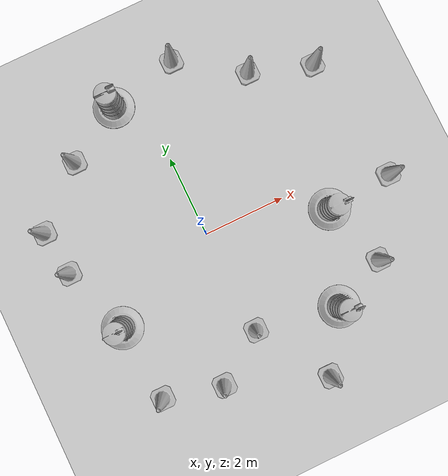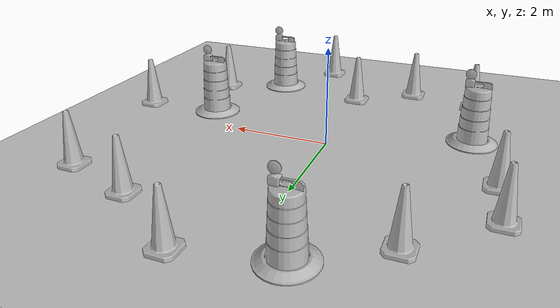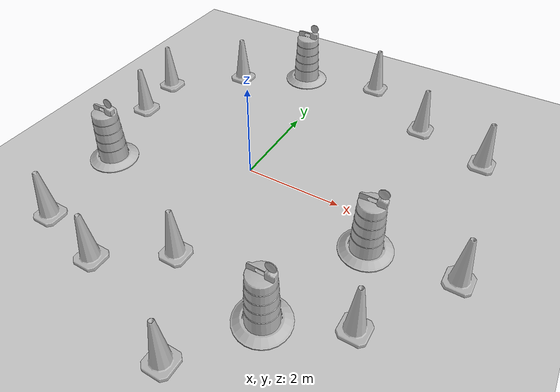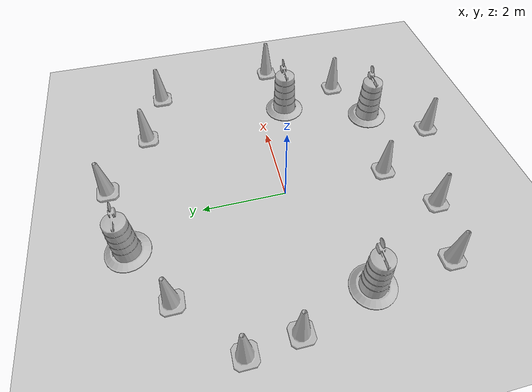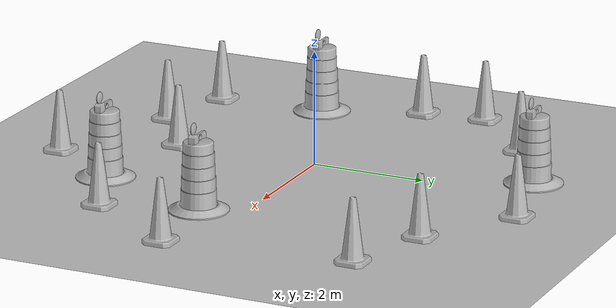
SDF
<sdf version="1.7">
 <world name="default">
  <light name="sun" type="directional">
   <pose>0 0 10 0 -0 0</pose>
   <diffuse>0.8 0.8 0.8 1</diffuse>
   <specular>0.2 0.2 0.2 1</specular>
   <attenuation>
    <range>1000</range>
    <constant>0.9</constant>
    <linear>0.01</linear>
    <quadratic>0.001</quadratic>
   </attenuation>
   <direction>-0.5 0.1 -0.9</direction>
   <spot><inner_angle>0</inner_angle><outer_angle>0</outer_angle><falloff>0</falloff></spot>
  </light>
  <model name="ground_plane">
   <static>1</static>
   <link name="link">
    <collision name="collision">
     <geometry><plane><normal>0 0 1</normal><size>100 100</size></plane></geometry>
     <surface>
      <contact><collide_bitmask>65535</collide_bitmask></contact>
      <friction><ode><mu>100</mu><mu2>50</mu2></ode></friction>
     </surface>
    </collision>
    <visual name="visual">
     <cast_shadows>0</cast_shadows>
     <geometry><plane><normal>0 0 1</normal><size>100 100</size></plane></geometry>
     <material>
      <script><uri>file://media/materials/scripts/gazebo.material</uri><name>Gazebo/Grey</name></script>
     </material>
    </visual>
   </link>
  </model>
  <gravity>0 0 -9.8</gravity>
  <magnetic_field>6e-06 2.3e-05 -4.2e-05</magnetic_field>
  <atmosphere type="adiabatic"/>
  <physics type="ode">
   <max_step_size>0.001</max_step_size>
   <real_time_factor>1</real_time_factor>
   <real_time_update_rate>1000</real_time_update_rate>
  </physics>
  <scene><ambient>0.4 0.4 0.4 1</ambient><background>0.7 0.7 0.7 1</background><shadows>1</shadows></scene>
  <audio><device>default</device></audio>
  <spherical_coordinates>
   <surface_model>EARTH_WGS84</surface_model>
   <latitude_deg>0</latitude_deg>
   <longitude_deg>0</longitude_deg>
   <elevation>0</elevation>
   <heading_deg>0</heading_deg>
  </spherical_coordinates>
  <model name="Construction Barrel">
   <link name="link">
    <inertial>
     <pose>0 0 0.4 0 -0 0</pose>
     <mass>500</mass>
     <inertia><ixx>51.2096</ixx><iyy>51.2096</iyy><izz>25</izz><ixy>0</ixy><ixz>0</ixz><iyz>0</iyz></inertia>
    </inertial>
    <collision name="collision">
     <geometry><mesh><uri>model://construction_barrel/meshes/construction_barrel.dae</uri></mesh></geometry>
    </collision>
    <visual name="visual">
     <geometry><mesh><uri>model://construction_barrel/meshes/construction_barrel.dae</uri></mesh></geometry>
    </visual>
   </link>
   <pose>-2.72878 -1.13362 -2e-06 4e-06 7e-06 -2.8e-05</pose>
  </model>
  <model name="Construction Cone">
   <link name="link">
    <collision name="collision">
     <geometry>
      <mesh><scale>10 10 10</scale><uri>model://construction_cone/meshes/construction_cone.dae</uri></mesh>
     </geometry>
    </collision>
    <visual name="visual">
     <geometry>
      <mesh><scale>10 10 10</scale><uri>model://construction_cone/meshes/construction_cone.dae</uri></mesh>
     </geometry>
    </visual>
    <inertial>
     <inertia><ixx>1</ixx><ixy>0</ixy><ixz>0</ixz><iyy>1</iyy><iyz>0</iyz><izz>1</izz></inertia>
     <mass>1</mass>
    </inertial>
   </link>
   <pose>0.076825 -2.53828 -0 0 -0 0</pose>
  </model>
  <model name="Construction Barrel_0">
   <link name="link">
    <inertial>
     <pose>0 0 0.4 0 -0 0</pose>
     <mass>500</mass>
     <inertia><ixx>51.2096</ixx><iyy>51.2096</iyy><izz>25</izz><ixy>0</ixy><ixz>0</ixz><iyz>0</iyz></inertia>
    </inertial>
    <collision name="collision">
     <geometry><mesh><uri>model://construction_barrel/meshes/construction_barrel.dae</uri></mesh></geometry>
    </collision>
    <visual name="visual">
     <geometry><mesh><uri>model://construction_barrel/meshes/construction_barrel.dae</uri></mesh></geometry>
    </visual>
   </link>
   <pose>2.08909 -2.89049 -0 0 0 -2.3e-05</pose>
  </model>
  <model name="Construction Cone_0">
   <link name="link">
    <collision name="collision">
     <geometry>
      <mesh><scale>10 10 10</scale><uri>model://construction_cone/meshes/construction_cone.dae</uri></mesh>
     </geometry>
    </collision>
    <visual name="visual">
     <geometry>
      <mesh><scale>10 10 10</scale><uri>model://construction_cone/meshes/construction_cone.dae</uri></mesh>
     </geometry>
    </visual>
    <inertial>
     <inertia><ixx>1</ixx><ixy>0</ixy><ixz>0</ixz><iyy>1</iyy><iyz>0</iyz><izz>1</izz></inertia>
     <mass>1</mass>
    </inertial>
   </link>
   <pose>4.53938 -0.586259 -0 0 -0 0</pose>
  </model>
  <model name="Construction Barrel_1">
   <link name="link">
    <inertial>
     <pose>0 0 0.4 0 -0 0</pose>
     <mass>500</mass>
     <inertia><ixx>51.2096</ixx><iyy>51.2096</iyy><izz>25</izz><ixy>0</ixy><ixz>0</ixz><iyz>0</iyz></inertia>
    </inertial>
    <collision name="collision">
     <geometry><mesh><uri>model://construction_barrel/meshes/construction_barrel.dae</uri></mesh></geometry>
    </collision>
    <visual name="visual">
     <geometry><mesh><uri>model://construction_barrel/meshes/construction_barrel.dae</uri></mesh></geometry>
    </visual>
   </link>
   <pose>2.90373 -0.727678 -0 0 0 -2.6e-05</pose>
  </model>
  <model name="Construction Cone_1">
   <link name="link">
    <collision name="collision">
     <geometry>
      <mesh><scale>10 10 10</scale><uri>model://construction_cone/meshes/construction_cone.dae</uri></mesh>
     </geometry>
    </collision>
    <visual name="visual">
     <geometry>
      <mesh><scale>10 10 10</scale><uri>model://construction_cone/meshes/construction_cone.dae</uri></mesh>
     </geometry>
    </visual>
    <inertial>
     <inertia><ixx>1</ixx><ixy>0</ixy><ixz>0</ixz><iyy>1</iyy><iyz>0</iyz><izz>1</izz></inertia>
     <mass>1</mass>
    </inertial>
   </link>
   <pose>1.04695 4.13731 -0 0 -0 0</pose>
  </model>
  <model name="Construction Cone_2">
   <link name="link">
    <collision name="collision">
     <geometry>
      <mesh><scale>10 10 10</scale><uri>model://construction_cone/meshes/construction_cone.dae</uri></mesh>
     </geometry>
    </collision>
    <visual name="visual">
     <geometry>
      <mesh><scale>10 10 10</scale><uri>model://construction_cone/meshes/construction_cone.dae</uri></mesh>
     </geometry>
    </visual>
    <inertial>
     <inertia><ixx>1</ixx><ixy>0</ixy><ixz>0</ixz><iyy>1</iyy><iyz>0</iyz><izz>1</izz></inertia>
     <mass>1</mass>
    </inertial>
   </link>
   <pose>-3.45036 1.68472 -0 0 -0 0</pose>
  </model>
  <model name="Construction Cone_3">
   <link name="link">
    <collision name="collision">
     <geometry>
      <mesh><scale>10 10 10</scale><uri>model://construction_cone/meshes/construction_cone.dae</uri></mesh>
     </geometry>
    </collision>
    <visual name="visual">
     <geometry>
      <mesh><scale>10 10 10</scale><uri>model://construction_cone/meshes/construction_cone.dae</uri></mesh>
     </geometry>
    </visual>
    <inertial>
     <inertia><ixx>1</ixx><ixy>0</ixy><ixz>0</ixz><iyy>1</iyy><iyz>0</iyz><izz>1</izz></inertia>
     <mass>1</mass>
    </inertial>
   </link>
   <pose>-2.56488 -3.01648 0 -0 -0 -0</pose>
  </model>
  <model name="Construction Cone_4">
   <link name="link">
    <collision name="collision">
     <geometry>
      <mesh><scale>10 10 10</scale><uri>model://construction_cone/meshes/construction_cone.dae</uri></mesh>
     </geometry>
    </collision>
    <visual name="visual">
     <geometry>
      <mesh><scale>10 10 10</scale><uri>model://construction_cone/meshes/construction_cone.dae</uri></mesh>
     </geometry>
    </visual>
    <inertial>
     <inertia><ixx>1</ixx><ixy>0</ixy><ixz>0</ixz><iyy>1</iyy><iyz>0</iyz><izz>1</izz></inertia>
     <mass>1</mass>
    </inertial>
   </link>
   <pose>1.18511 -4.24437 -0 0 -0 0</pose>
  </model>
  <model name="Construction Cone_5">
   <link name="link">
    <collision name="collision">
     <geometry>
      <mesh><scale>10 10 10</scale><uri>model://construction_cone/meshes/construction_cone.dae</uri></mesh>
     </geometry>
    </collision>
    <visual name="visual">
     <geometry>
      <mesh><scale>10 10 10</scale><uri>model://construction_cone/meshes/construction_cone.dae</uri></mesh>
     </geometry>
    </visual>
    <inertial>
     <inertia><ixx>1</ixx><ixy>0</ixy><ixz>0</ixz><iyy>1</iyy><iyz>0</iyz><izz>1</izz></inertia>
     <mass>1</mass>
    </inertial>
   </link>
   <pose>4.09423 2.58923 -0 0 -0 0</pose>
  </model>
  <model name="Construction Cone_6">
   <link name="link">
    <collision name="collision">
     <geometry>
      <mesh><scale>10 10 10</scale><uri>model://construction_cone/meshes/construction_cone.dae</uri></mesh>
     </geometry>
    </collision>
    <visual name="visual">
     <geometry>
      <mesh><scale>10 10 10</scale><uri>model://construction_cone/meshes/construction_cone.dae</uri></mesh>
     </geometry>
    </visual>
    <inertial>
     <inertia><ixx>1</ixx><ixy>0</ixy><ixz>0</ixz><iyy>1</iyy><iyz>0</iyz><izz>1</izz></inertia>
     <mass>1</mass>
    </inertial>
   </link>
   <pose>-1.14179 -3.36617 -0 0 -0 0</pose>
  </model>
  <model name="Construction Cone_7">
   <link name="link">
    <collision name="collision">
     <geometry>
      <mesh><scale>10 10 10</scale><uri>model://construction_cone/meshes/construction_cone.dae</uri></mesh>
     </geometry>
    </collision>
    <visual name="visual">
     <geometry>
      <mesh><scale>10 10 10</scale><uri>model://construction_cone/meshes/construction_cone.dae</uri></mesh>
     </geometry>
    </visual>
    <inertial>
     <inertia><ixx>1</ixx><ixy>0</ixy><ixz>0</ixz><iyy>1</iyy><iyz>0</iyz><izz>1</izz></inertia>
     <mass>1</mass>
    </inertial>
   </link>
   <pose>-3.31542 0.562256 -5e-06 -4e-06 1e-06 0</pose>
  </model>
  <model name="Construction Cone_8">
   <link name="link">
    <collision name="collision">
     <geometry>
      <mesh><scale>10 10 10</scale><uri>model://construction_cone/meshes/construction_cone.dae</uri></mesh>
     </geometry>
    </collision>
    <visual name="visual">
     <geometry>
      <mesh><scale>10 10 10</scale><uri>model://construction_cone/meshes/construction_cone.dae</uri></mesh>
     </geometry>
    </visual>
    <inertial>
     <inertia><ixx>1</ixx><ixy>0</ixy><ixz>0</ixz><iyy>1</iyy><iyz>0</iyz><izz>1</izz></inertia>
     <mass>1</mass>
    </inertial>
   </link>
   <pose>-2.09652 2.90585 -0 0 -1e-06 0</pose>
  </model>
  <model name="Construction Barrel_2">
   <link name="link">
    <inertial>
     <pose>0 0 0.4 0 -0 0</pose>
     <mass>500</mass>
     <inertia><ixx>51.2096</ixx><iyy>51.2096</iyy><izz>25</izz><ixy>0</ixy><ixz>0</ixz><iyz>0</iyz></inertia>
    </inertial>
    <collision name="collision">
     <geometry><mesh><uri>model://construction_barrel/meshes/construction_barrel.dae</uri></mesh></geometry>
    </collision>
    <visual name="visual">
     <geometry><mesh><uri>model://construction_barrel/meshes/construction_barrel.dae</uri></mesh></geometry>
    </visual>
   </link>
   <pose>-0.688825 3.72292 1e-06 2e-06 3e-06 -6e-06</pose>
  </model>
  <model name="Construction Cone_9">
   <link name="link">
    <collision name="collision">
     <geometry>
      <mesh><scale>10 10 10</scale><uri>model://construction_cone/meshes/construction_cone.dae</uri></mesh>
     </geometry>
    </collision>
    <visual name="visual">
     <geometry>
      <mesh><scale>10 10 10</scale><uri>model://construction_cone/meshes/construction_cone.dae</uri></mesh>
     </geometry>
    </visual>
    <inertial>
     <inertia><ixx>1</ixx><ixy>0</ixy><ixz>0</ixz><iyy>1</iyy><iyz>0</iyz><izz>1</izz></inertia>
     <mass>1</mass>
    </inertial>
   </link>
   <pose>2.58776 3.08601 -0 0 -0 0</pose>
  </model>
  <model name="Construction Cone_10">
   <link name="link">
    <collision name="collision">
     <geometry>
      <mesh><scale>10 10 10</scale><uri>model://construction_cone/meshes/construction_cone.dae</uri></mesh>
     </geometry>
    </collision>
    <visual name="visual">
     <geometry>
      <mesh><scale>10 10 10</scale><uri>model://construction_cone/meshes/construction_cone.dae</uri></mesh>
     </geometry>
    </visual>
    <inertial>
     <inertia><ixx>1</ixx><ixy>0</ixy><ixz>0</ixz><iyy>1</iyy><iyz>0</iyz><izz>1</izz></inertia>
     <mass>1</mass>
    </inertial>
   </link>
   <pose>3.41242 -2.30351 -0 0 -1e-06 0</pose>
  </model>
 </world>
</sdf>
